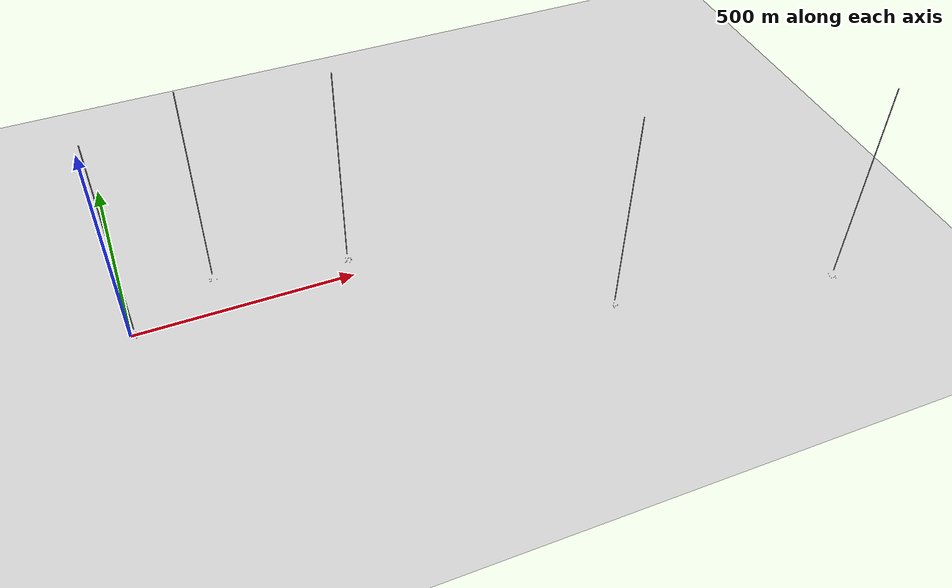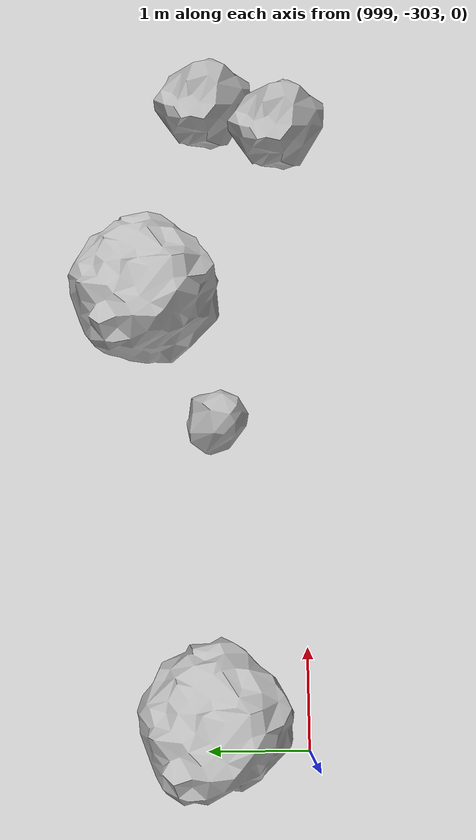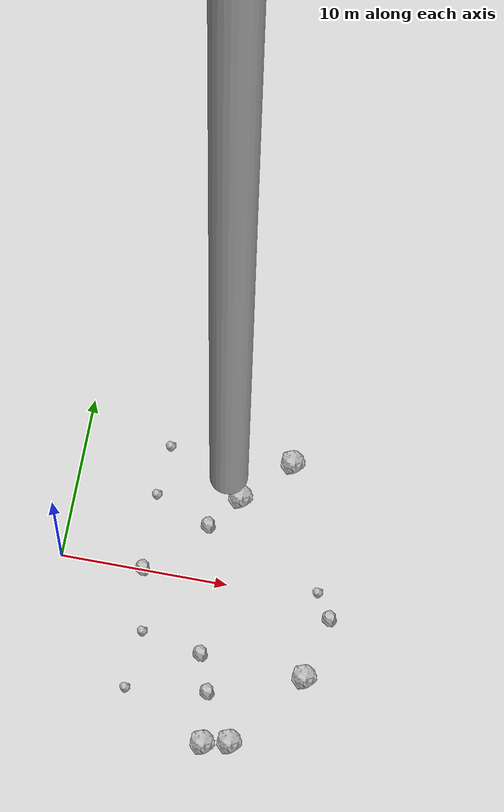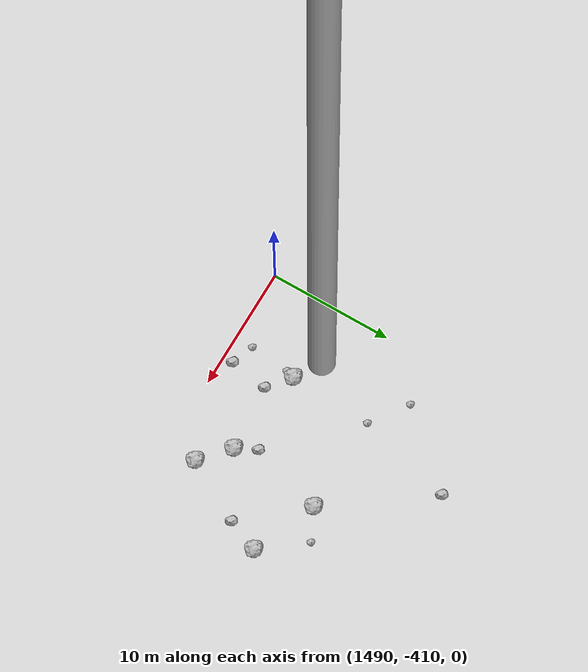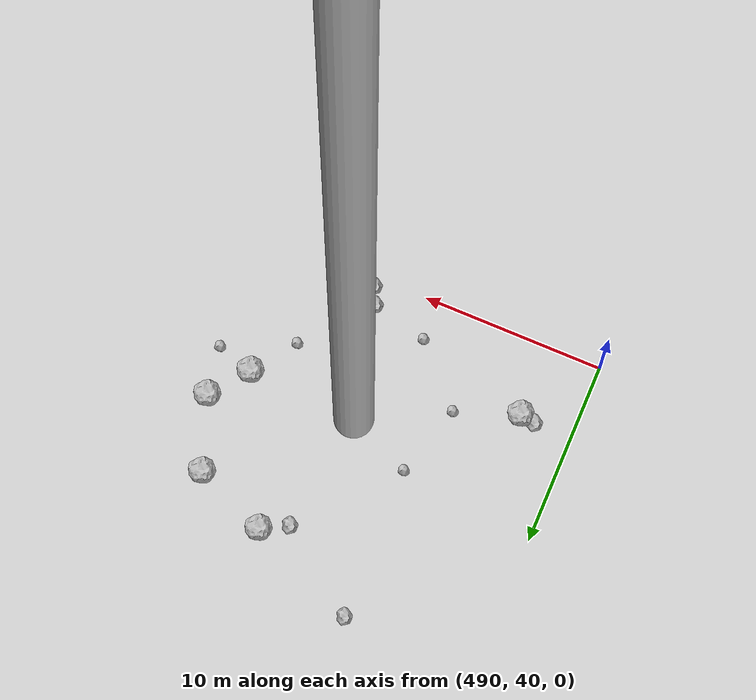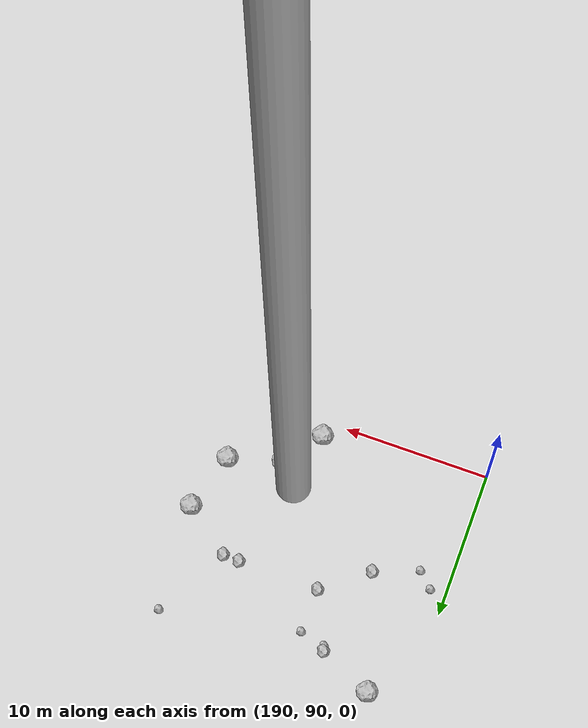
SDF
<?xml version="1.0" ?>
<sdf version="1.6">
  <world name="default">

    <include>
      <uri>model://custom_ground</uri>
    </include>

    <include>
      <uri>model://sun</uri>
    </include>

    <spherical_coordinates>
      <surface_model>EARTH_WGS84</surface_model>
      <latitude_deg>38.161479</latitude_deg>
      <longitude_deg>-122.454630</longitude_deg>
      <elevation>488.0</elevation>
      <heading_deg>90</heading_deg>
    </spherical_coordinates>

    <model name="rock1_0_0">
      <include>
        <uri>model://rock1</uri>
        <pose>12.53538039121567 8.125405596001517 0.5 0 0 0</pose>
      </include>
    </model>
    <model name="rock1_0_1">
      <include>
        <uri>model://rock1</uri>
        <pose>10.37800852033007 -9.735788691455422 0.5 0 0 0</pose>
      </include>
    </model>
    <model name="rock1_0_2">
      <include>
        <uri>model://rock1</uri>
        <pose>9.836013800357719 5.419702469679811 0.5 0 0 0</pose>
      </include>
    </model>
    <model name="rock1_0_3">
      <include>
        <uri>model://rock1</uri>
        <pose>15.505749173925182 -4.8066793674918245 0.5 0 0 0</pose>
      </include>
    </model>
    <model name="rock1_0_4">
      <include>
        <uri>model://rock1</uri>
        <pose>11.905790254652784 -9.407788352547273 0.5 0 0 0</pose>
      </include>
    </model>
    <model name="rock2_0_0">
      <include>
        <uri>model://rock2</uri>
        <pose>16.33052603645431 -0.977785544855907 0.3 0 0 0</pose>
      </include>
    </model>
    <model name="rock2_0_1">
      <include>
        <uri>model://rock2</uri>
        <pose>9.247861501580257 -4.456092368808655 0.3 0 0 0</pose>
      </include>
    </model>
    <model name="rock2_0_2">
      <include>
        <uri>model://rock2</uri>
        <pose>8.241048932651111 3.4013935107862316 0.3 0 0 0</pose>
      </include>
    </model>
    <model name="rock2_0_3">
      <include>
        <uri>model://rock2</uri>
        <pose>10.062977941256175 -6.648109078799909 0.3 0 0 0</pose>
      </include>
    </model>
    <model name="rock2_0_4">
      <include>
        <uri>model://rock2</uri>
        <pose>4.913955798185665 0.07476691155444115 0.3 0 0 0</pose>
      </include>
    </model>
    <model name="rock3_0_0">
      <include>
        <uri>model://rock3</uri>
        <pose>5.278296650370871 -7.2762060920058325 0.2 0 0 0</pose>
      </include>
    </model>
    <model name="rock3_0_1">
      <include>
        <uri>model://rock3</uri>
        <pose>5.61911133925566 -3.7554591437792784 0.2 0 0 0</pose>
      </include>
    </model>
    <model name="rock3_0_2">
      <include>
        <uri>model://rock3</uri>
        <pose>5.0965862907263375 7.890541064906063 0.2 0 0 0</pose>
      </include>
    </model>
    <model name="rock3_0_3">
      <include>
        <uri>model://rock3</uri>
        <pose>4.855606375292414 4.740823789781949 0.2 0 0 0</pose>
      </include>
    </model>
    <model name="rock3_0_4">
      <include>
        <uri>model://rock3</uri>
        <pose>15.376928658157967 0.463176848466194 0.2 0 0 0</pose>
      </include>
    </model>
    <model name="rock1_1_0">
      <include>
        <uri>model://rock1</uri>
        <pose>208.0110755134297 98.63289190303189 0.5 0 0 0</pose>
      </include>
    </model>
    <model name="rock1_1_1">
      <include>
        <uri>model://rock1</uri>
        <pose>201.36558836061653 91.05670913993158 0.5 0 0 0</pose>
      </include>
    </model>
    <model name="rock1_1_2">
      <include>
        <uri>model://rock1</uri>
        <pose>192.77336477092973 106.4768756571913 0.5 0 0 0</pose>
      </include>
    </model>
    <model name="rock1_1_3">
      <include>
        <uri>model://rock1</uri>
        <pose>206.8819722850818 94.70220850217368 0.5 0 0 0</pose>
      </include>
    </model>
    <model name="rock1_1_4">
      <include>
        <uri>model://rock1</uri>
        <pose>203.30266214326596 93.67075120603599 0.5 0 0 0</pose>
      </include>
    </model>
    <model name="rock2_1_0">
      <include>
        <uri>model://rock2</uri>
        <pose>198.10264418772906 101.14363515701322 0.3 0 0 0</pose>
      </include>
    </model>
    <model name="rock2_1_1">
      <include>
        <uri>model://rock2</uri>
        <pose>195.09851770268534 98.7798139024947 0.3 0 0 0</pose>
      </include>
    </model>
    <model name="rock2_1_2">
      <include>
        <uri>model://rock2</uri>
        <pose>203.680625139305 101.1053200528931 0.3 0 0 0</pose>
      </include>
    </model>
    <model name="rock2_1_3">
      <include>
        <uri>model://rock2</uri>
        <pose>204.8126637007921 101.0426806235002 0.3 0 0 0</pose>
      </include>
    </model>
    <model name="rock2_1_4">
      <include>
        <uri>model://rock2</uri>
        <pose>196.35402501189915 104.88488547567403 0.3 0 0 0</pose>
      </include>
    </model>
    <model name="rock3_1_0">
      <include>
        <uri>model://rock3</uri>
        <pose>192.08482051014792 97.59077782743945 0.2 0 0 0</pose>
      </include>
    </model>
    <model name="rock3_1_1">
      <include>
        <uri>model://rock3</uri>
        <pose>198.14876404558441 104.13426491808805 0.2 0 0 0</pose>
      </include>
    </model>
    <model name="rock3_1_2">
      <include>
        <uri>model://rock3</uri>
        <pose>196.41653608296252 104.51933371390808 0.2 0 0 0</pose>
      </include>
    </model>
    <model name="rock3_1_3">
      <include>
        <uri>model://rock3</uri>
        <pose>191.07162049037595 98.56848530435008 0.2 0 0 0</pose>
      </include>
    </model>
    <model name="rock3_1_4">
      <include>
        <uri>model://rock3</uri>
        <pose>207.48782082059955 105.92575805907362 0.2 0 0 0</pose>
      </include>
    </model>
    <model name="rock1_2_0">
      <include>
        <uri>model://rock1</uri>
        <pose>507.1997467214876 47.2223783129716 0.5 0 0 0</pose>
      </include>
    </model>
    <model name="rock1_2_1">
      <include>
        <uri>model://rock1</uri>
        <pose>503.5406411349056 54.862788612093595 0.5 0 0 0</pose>
      </include>
    </model>
    <model name="rock1_2_2">
      <include>
        <uri>model://rock1</uri>
        <pose>508.839646950189 49.268474998868655 0.5 0 0 0</pose>
      </include>
    </model>
    <model name="rock1_2_3">
      <include>
        <uri>model://rock1</uri>
        <pose>507.49482849439244 53.19029898818887 0.5 0 0 0</pose>
      </include>
    </model>
    <model name="rock1_2_4">
      <include>
        <uri>model://rock1</uri>
        <pose>492.9794112882987 43.89330980977902 0.5 0 0 0</pose>
      </include>
    </model>
    <model name="rock2_2_0">
      <include>
        <uri>model://rock2</uri>
        <pose>492.1191137026177 44.074207593459185 0.3 0 0 0</pose>
      </include>
    </model>
    <model name="rock2_2_1">
      <include>
        <uri>model://rock2</uri>
        <pose>502.0474898388401 54.115318516287815 0.3 0 0 0</pose>
      </include>
    </model>
    <model name="rock2_2_2">
      <include>
        <uri>model://rock2</uri>
        <pose>502.82074514223626 40.503823679932935 0.3 0 0 0</pose>
      </include>
    </model>
    <model name="rock2_2_3">
      <include>
        <uri>model://rock2</uri>
        <pose>502.38233021400043 41.427894444513726 0.3 0 0 0</pose>
      </include>
    </model>
    <model name="rock2_2_4">
      <include>
        <uri>model://rock2</uri>
        <pose>497.51602242940584 57.49074611667248 0.3 0 0 0</pose>
      </include>
    </model>
    <model name="rock3_2_0">
      <include>
        <uri>model://rock3</uri>
        <pose>499.2699057287083 42.109793730246295 0.2 0 0 0</pose>
      </include>
    </model>
    <model name="rock3_2_1">
      <include>
        <uri>model://rock3</uri>
        <pose>505.41516128622993 44.889384436205034 0.2 0 0 0</pose>
      </include>
    </model>
    <model name="rock3_2_2">
      <include>
        <uri>model://rock3</uri>
        <pose>509.15563509965705 46.61450821910122 0.2 0 0 0</pose>
      </include>
    </model>
    <model name="rock3_2_3">
      <include>
        <uri>model://rock3</uri>
        <pose>497.55326393600245 49.0410150555422 0.2 0 0 0</pose>
      </include>
    </model>
    <model name="rock3_2_4">
      <include>
        <uri>model://rock3</uri>
        <pose>496.35417238073904 45.11326428320085 0.2 0 0 0</pose>
      </include>
    </model>
    <model name="rock1_3_0">
      <include>
        <uri>model://rock1</uri>
        <pose>999.392122657633 -297.40259861198126 0.5 0 0 0</pose>
      </include>
    </model>
    <model name="rock1_3_1">
      <include>
        <uri>model://rock1</uri>
        <pose>1003.5788970231404 -301.41843813135335 0.5 0 0 0</pose>
      </include>
    </model>
    <model name="rock1_3_2">
      <include>
        <uri>model://rock1</uri>
        <pose>999.4203528205383 -302.07292569459435 0.5 0 0 0</pose>
      </include>
    </model>
    <model name="rock1_3_3">
      <include>
        <uri>model://rock1</uri>
        <pose>1004.427817795849 -292.05885985368786 0.5 0 0 0</pose>
      </include>
    </model>
    <model name="rock1_3_4">
      <include>
        <uri>model://rock1</uri>
        <pose>998.1899326233796 -305.5026626040715 0.5 0 0 0</pose>
      </include>
    </model>
    <model name="rock2_3_0">
      <include>
        <uri>model://rock2</uri>
        <pose>996.2577604322737 -302.0133677925023 0.3 0 0 0</pose>
      </include>
    </model>
    <model name="rock2_3_1">
      <include>
        <uri>model://rock2</uri>
        <pose>1006.9585046608619 -297.83402317007744 0.3 0 0 0</pose>
      </include>
    </model>
    <model name="rock2_3_2">
      <include>
        <uri>model://rock2</uri>
        <pose>1005.3087479564135 -302.7663130192151 0.3 0 0 0</pose>
      </include>
    </model>
    <model name="rock2_3_3">
      <include>
        <uri>model://rock2</uri>
        <pose>1005.5358486221595 -302.0176601842947 0.3 0 0 0</pose>
      </include>
    </model>
    <model name="rock2_3_4">
      <include>
        <uri>model://rock2</uri>
        <pose>994.8029572841732 -307.31172794723705 0.3 0 0 0</pose>
      </include>
    </model>
    <model name="rock3_3_0">
      <include>
        <uri>model://rock3</uri>
        <pose>1001.4547945161011 -290.45590169822606 0.2 0 0 0</pose>
      </include>
    </model>
    <model name="rock3_3_1">
      <include>
        <uri>model://rock3</uri>
        <pose>1002.2514700224699 -302.1312462535317 0.2 0 0 0</pose>
      </include>
    </model>
    <model name="rock3_3_2">
      <include>
        <uri>model://rock3</uri>
        <pose>1008.4665487350587 -300.92125847806346 0.2 0 0 0</pose>
      </include>
    </model>
    <model name="rock3_3_3">
      <include>
        <uri>model://rock3</uri>
        <pose>1000.434143401269 -294.4025528825984 0.2 0 0 0</pose>
      </include>
    </model>
    <model name="rock3_3_4">
      <include>
        <uri>model://rock3</uri>
        <pose>1009.4307187017894 -299.64390755319533 0.2 0 0 0</pose>
      </include>
    </model>
    <model name="rock1_4_0">
      <include>
        <uri>model://rock1</uri>
        <pose>1505.9220161266194 -407.62627533140295 0.5 0 0 0</pose>
      </include>
    </model>
    <model name="rock1_4_1">
      <include>
        <uri>model://rock1</uri>
        <pose>1503.6142067126982 -405.59432093527056 0.5 0 0 0</pose>
      </include>
    </model>
    <model name="rock1_4_2">
      <include>
        <uri>model://rock1</uri>
        <pose>1509.699148135459 -400.2214195970222 0.5 0 0 0</pose>
      </include>
    </model>
    <model name="rock1_4_3">
      <include>
        <uri>model://rock1</uri>
        <pose>1504.5255690203317 -398.03813956091506 0.5 0 0 0</pose>
      </include>
    </model>
    <model name="rock1_4_4">
      <include>
        <uri>model://rock1</uri>
        <pose>1496.4581333870206 -404.5794213935349 0.5 0 0 0</pose>
      </include>
    </model>
    <model name="rock2_4_0">
      <include>
        <uri>model://rock2</uri>
        <pose>1498.1995031240665 -406.04349643667257 0.3 0 0 0</pose>
      </include>
    </model>
    <model name="rock2_4_1">
      <include>
        <uri>model://rock2</uri>
        <pose>1508.5905981219305 -402.78902305232907 0.3 0 0 0</pose>
      </include>
    </model>
    <model name="rock2_4_2">
      <include>
        <uri>model://rock2</uri>
        <pose>1497.6892124994429 -409.1891078771872 0.3 0 0 0</pose>
      </include>
    </model>
    <model name="rock2_4_3">
      <include>
        <uri>model://rock2</uri>
        <pose>1502.7241859644118 -403.89937938961845 0.3 0 0 0</pose>
      </include>
    </model>
    <model name="rock2_4_4">
      <include>
        <uri>model://rock2</uri>
        <pose>1498.7519916475608 -390.1327192856962 0.3 0 0 0</pose>
      </include>
    </model>
    <model name="rock3_4_0">
      <include>
        <uri>model://rock3</uri>
        <pose>1506.969626580036 -396.8140430267451 0.2 0 0 0</pose>
      </include>
    </model>
    <model name="rock3_4_1">
      <include>
        <uri>model://rock3</uri>
        <pose>1496.1664847909062 -405.3039737749629 0.2 0 0 0</pose>
      </include>
    </model>
    <model name="rock3_4_2">
      <include>
        <uri>model://rock3</uri>
        <pose>1493.7254573168277 -395.8196518618192 0.2 0 0 0</pose>
      </include>
    </model>
    <model name="rock3_4_3">
      <include>
        <uri>model://rock3</uri>
        <pose>1496.6749720011628 -397.8973406581679 0.2 0 0 0</pose>
      </include>
    </model>
    <model name="rock3_4_4">
      <include>
        <uri>model://rock3</uri>
        <pose>1495.8694682562766 -408.5458872507722 0.2 0 0 0</pose>
      </include>
    </model>

    <model name="cylinder_1">
      <static>true</static>
      <link name="link">
        <visual name="visual">
          <geometry>
            <cylinder>
              <radius>1</radius>
              <length>500</length>
            </cylinder>
          </geometry>
        </visual>
      </link>
      <pose>10 0 270 0 0 0</pose>
    </model>

    <model name="cylinder_2">
      <static>true</static>
      <link name="link">
        <visual name="visual">
          <geometry>
            <cylinder>
              <radius>1</radius>
              <length>500</length>
            </cylinder>
          </geometry>
        </visual>
      </link>
      <pose>200 100 270 0 0 0</pose>
    </model>

    <model name="cylinder_3">
      <static>true</static>
      <link name="link">
        <visual name="visual">
          <geometry>
            <cylinder>
              <radius>1</radius>
              <length>500</length>
            </cylinder>
          </geometry>
        </visual>
      </link>
      <pose>500 50 270 0 0 0</pose>
    </model>

    <model name="cylinder_4">
      <static>true</static>
      <link name="link">
        <visual name="visual">
          <geometry>
            <cylinder>
              <radius>1</radius>
              <length>500</length>
            </cylinder>
          </geometry>
        </visual>
      </link>
      <pose>1000 -300 270 0 0 0</pose>
    </model>

    <model name="cylinder_5">
      <static>true</static>
      <link name="link">
        <visual name="visual">
          <geometry>
            <cylinder>
              <radius>1</radius>
              <length>500</length>
            </cylinder>
          </geometry>
        </visual>
      </link>
      <pose>1500 -400 270 0 0 0</pose>
    </model>

  </world>
</sdf>

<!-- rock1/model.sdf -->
<sdf version="1.6">
  <model name="rock1">
    <static>true</static> <!-- Set to true if the model should not move -->
    <pose>0 0 0 0 0 0</pose>

    <!--z offset is 0.5 for full scale-->

    <link name="link">
      <collision name="rock1_collision">
        <geometry>
          <mesh>
            <uri>model://meshes/rock1.dae</uri>
          </mesh>
        </geometry>
      </collision>
      <visual name="rock1_visual">
        <geometry>
          <mesh>
            <uri>model://meshes/rock1.dae</uri>
          </mesh>
        </geometry>
        <material>
          <script>
            <uri>model://materials/scripts/sand_pebbles.material</uri>
            <name>custom_ground/Image</name>
          </script>
        </material>
      </visual>
    </link>
  </model>
</sdf>

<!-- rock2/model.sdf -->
<sdf version="1.6">
  <model name="rock2">
    <static>true</static> <!-- Set to true if the model should not move -->
    <pose>0 0 0 0 0 0</pose>

    <!--z offset is 0.3 for full scale-->

    <link name="link">
      <collision name="rock2_collision">
        <geometry>
          <mesh>
            <uri>model://meshes/rock2.dae</uri>
          </mesh>
        </geometry>
      </collision>
      <visual name="rock2_visual">
        <geometry>
          <mesh>
            <uri>model://meshes/rock2.dae</uri>
          </mesh>
        </geometry>
        <material>
          <script>
            <uri>model://materials/scripts/sand_pebbles.material</uri>
            <name>custom_ground/Image</name>
          </script>
        </material>
      </visual>
    </link>
  </model>
</sdf>

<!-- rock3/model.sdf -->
<sdf version="1.6">
  <model name="rock3">
    <static>true</static> <!-- Set to true if the model should not move -->
    <pose>0 0 0 0 0 0</pose>

    <!--z offset is 0.2 for full scale-->

    <link name="link">
      <collision name="rock3_collision">
        <geometry>
          <mesh>
            <uri>model://meshes/rock3.dae</uri>
          </mesh>
        </geometry>
      </collision>
      <visual name="rock3_visual">
        <geometry>
          <mesh>
            <uri>model://meshes/rock3.dae</uri>
          </mesh>
        </geometry>
        <material>
          <script>
            <uri>model://materials/scripts/sand_pebbles.material</uri>
            <name>custom_ground/Image</name>
          </script>
        </material>
      </visual>
    </link>
  </model>
</sdf>

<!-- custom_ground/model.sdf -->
<sdf version="1.6">
  <model name="custom_ground">
    <static>true</static> <!-- Ground is static and immovable -->
    <link name="ground_link">
      <pose>240 0 0 0 0 0</pose> <!-- Position and orientation relative to the world -->
      <!-- Visual Representation -->
      <visual name="ground_visual">
        <geometry>
          <plane>
            <normal>0 0 1</normal> <!-- Upward facing plane -->
            <size>500 500</size> <!-- Size of the plane -->
          </plane>
        </geometry>
        <material>
          <script>
            <uri>model://materials/scripts/sand_pebbles.material</uri>
            <name>custom_ground/Image</name>
          </script>
        </material>
      </visual>

      <!-- Collision Representation -->
      <collision name="ground_collision">
        <geometry>
          <plane>
            <normal>0 0 1</normal>
            <size>100 100</size>
          </plane>
        </geometry>
      </collision>

    </link>
  </model>
</sdf>
